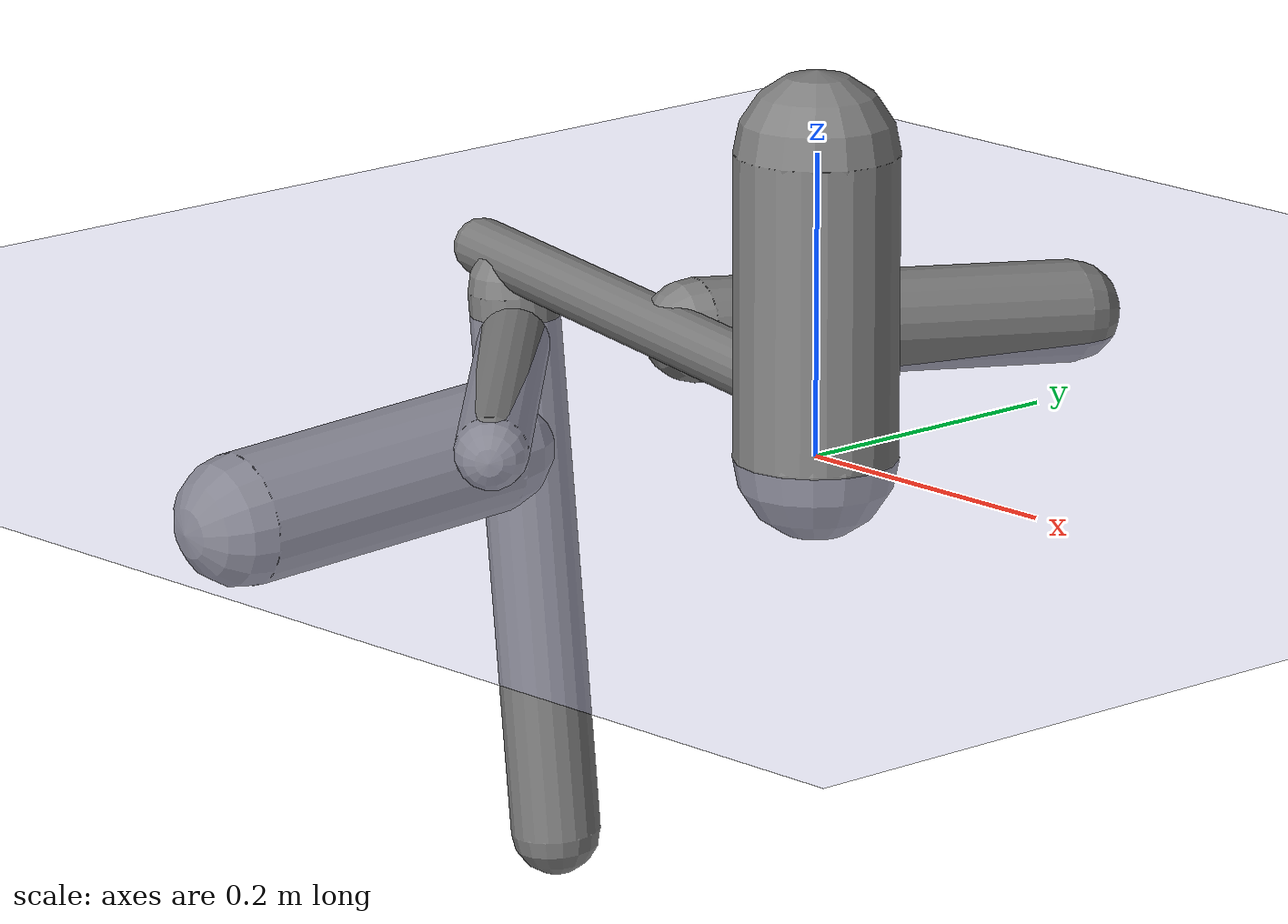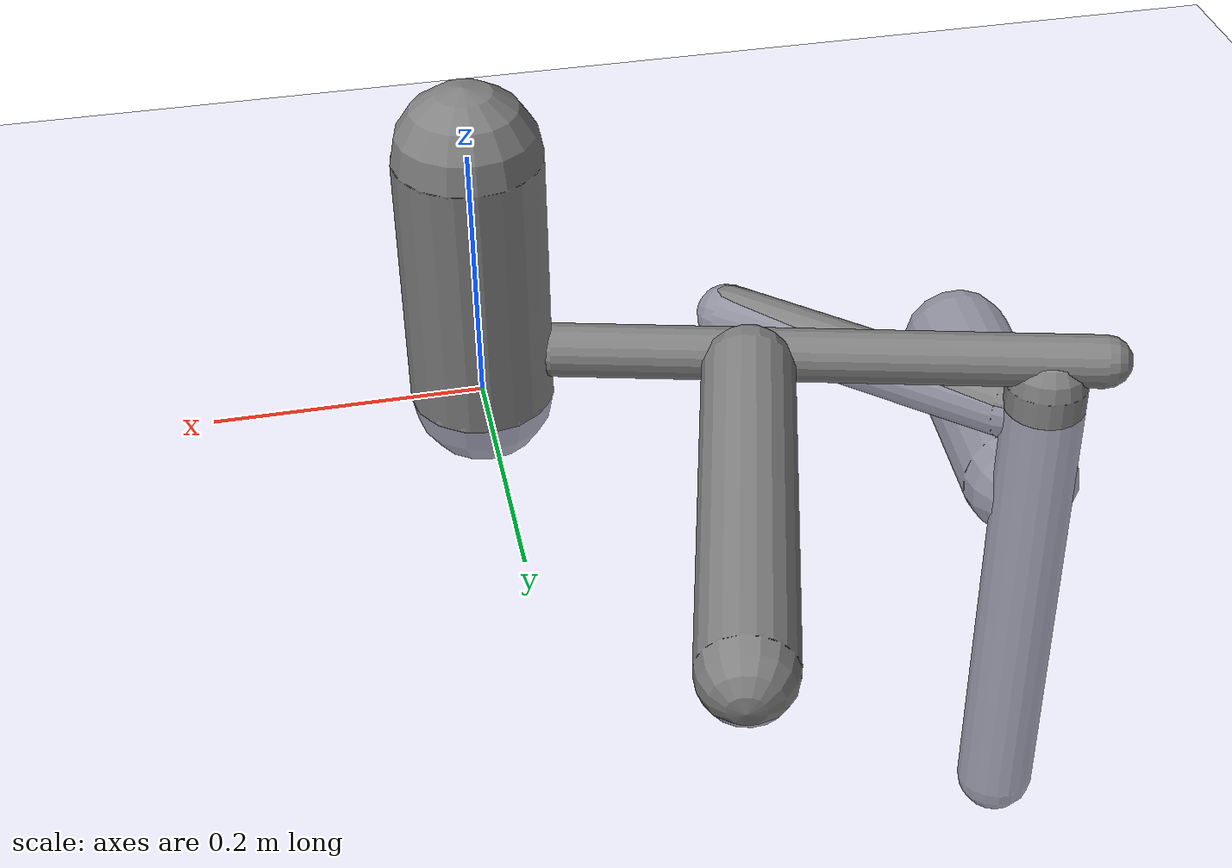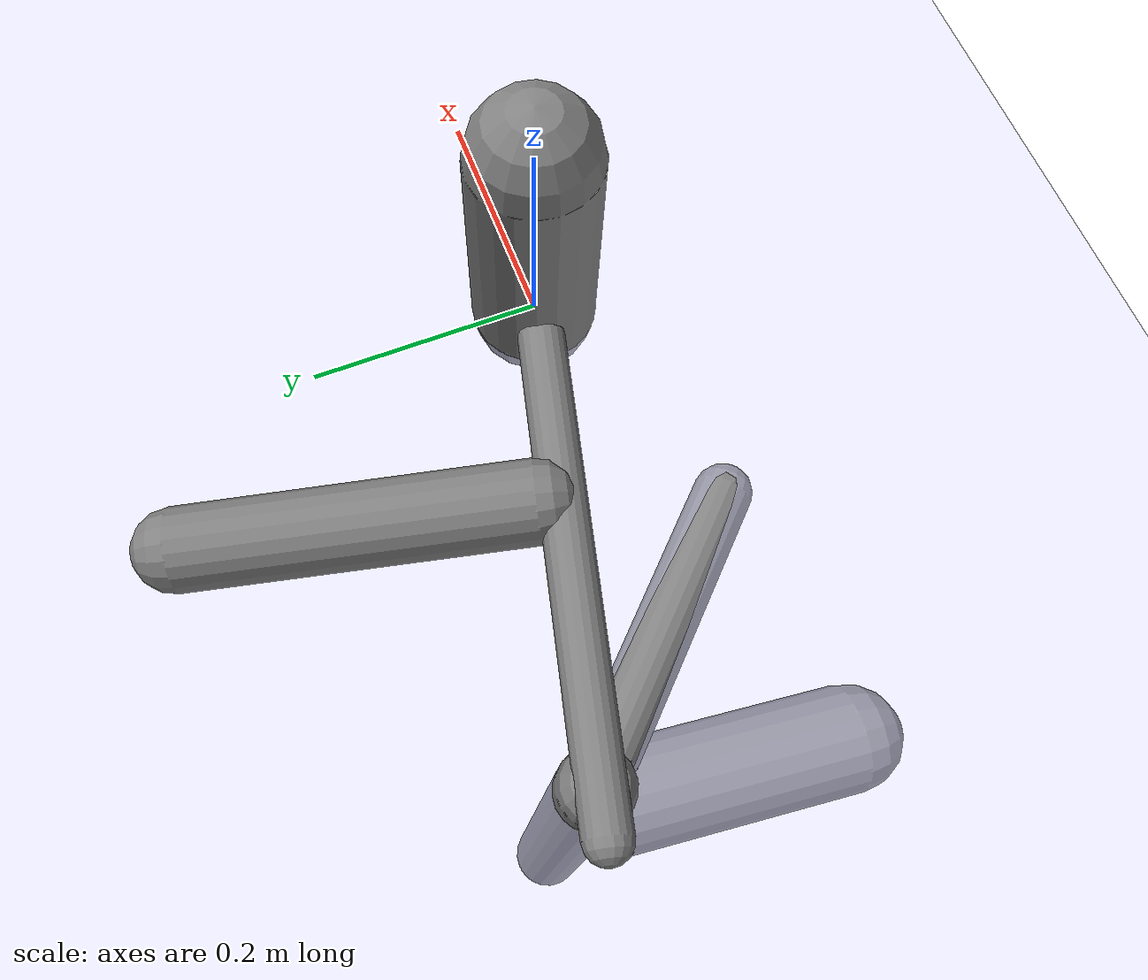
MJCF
<?xml version='1.0' encoding='UTF-8'?>
<mujoco model="robot_model">
  <worldbody>
    <light name="light" pos="0 -3 10" dir="0 0.5 -1" diffuse=".8 .8 .8" specular="0.1 0.1 0.1"/>
    <geom name="floor" type="plane" size="10.0 10.0 0.1" pos="0 0 0" rgba="0.8 0.8 1 1" contype="2" conaffinity="1"/>
    <body name="limb0" pos="0 0 0">
      <geom name="limb0_geom" type="capsule" fromto="0 0 0 0 0 0.2" size="0.053945224449662856" density="650.8536998548274" contype="1" conaffinity="2"/>
      <site type="sphere" size="0.01" name="limb0_site0" pos="-0.05231557374489271 0.013159330707418062 0.03767331421958639" quat="0.7071067811865476 -0.17249074545559395 -0.6857455378871767 0.0"/>
      <freejoint name="limb0_root"/>
      <body name="limb1" pos="-0.05231557374489271 0.013159330707418062 0.03767331421958639" quat="0.7071067811865476 -0.17249074545559395 -0.6857455378871767 0.0">
        <geom name="limb1_geom" type="capsule" fromto="0 0 0 0 0 0.40880768380833493" size="0.02" density="1012.7199341376381" contype="1" conaffinity="2"/>
        <site type="sphere" size="0.01" name="limb1_site0" pos="-0.01893624620227292 0.006435726825068351 0.3679047553688307" quat="0.7071067811865476 -0.2275373039935 -0.6694974049922594 0.0"/>
        <site type="sphere" size="0.01" name="limb1_site1" pos="0.0034024987314050944 0.019708450024869706 0.14549719725384433" quat="0.7071067811865476 -0.6967989329630775 0.12029649629775836 0.0"/>
        <body name="limb2" pos="-0.01893624620227292 0.006435726825068351 0.3679047553688307" quat="0.7071067811865476 -0.2275373039935 -0.6694974049922594 0.0">
          <geom name="limb2_geom" type="capsule" fromto="0 0 0 0 0 0.39228239834336115" size="0.031234842456126257" density="854.5538514341013" contype="1" conaffinity="2"/>
          <site type="sphere" size="0.01" name="limb2_site0" pos="-0.01446640470735543 -0.027682819908781547 0.10617060175419196" quat="0.7071067811865476 0.6266946826244069 -0.32749622100154663 0.0"/>
          <site type="sphere" size="0.01" name="limb2_site1" pos="-0.030515171451798145 -0.006666310413293918 0.029985682452816506" quat="0.7071067811865476 0.15091458538187963 -0.6908145828795272 0.0"/>
          <body name="limb3" pos="-0.01446640470735543 -0.027682819908781547 0.10617060175419196" quat="0.7071067811865476 0.6266946826244069 -0.32749622100154663 0.0">
            <geom name="limb3_geom" type="capsule" fromto="0 0 0 0 0 0.20587440072907823" size="0.04603065339053593" density="1089.820416514438" contype="1" conaffinity="2"/>
            <joint name="joint_limb2_limb3_0" type="hinge" axis="1 0 0" range="-76.8184141901732 76.8184141901732" damping="5.0"/>
          </body>
          <body name="limb4" pos="-0.030515171451798145 -0.006666310413293918 0.029985682452816506" quat="0.7071067811865476 0.15091458538187963 -0.6908145828795272 0.0">
            <geom name="limb4_geom" type="capsule" fromto="0 0 0 0 0 0.24646853483197184" size="0.02483242515105751" density="400.0" contype="1" conaffinity="2"/>
            <joint name="joint_limb2_limb4_0" type="hinge" axis="0 0 1" range="-36.57311519522722 36.57311519522722" damping="5.0"/>
          </body>
          <joint name="joint_limb1_limb2_0" type="hinge" axis="0 0 1" range="-71.25046564657563 71.25046564657563" damping="5.0"/>
        </body>
        <body name="limb5" pos="0.0034024987314050944 0.019708450024869706 0.14549719725384433" quat="0.7071067811865476 -0.6967989329630775 0.12029649629775836 0.0">
          <geom name="limb5_geom" type="capsule" fromto="0 0 0 0 0 0.28928158855542757" size="0.03498427886939431" density="573.2226405414596" contype="1" conaffinity="2"/>
          <joint name="joint_limb1_limb5_0" type="hinge" axis="1 0 0" range="-48.18281063347258 48.18281063347258" damping="5.0"/>
        </body>
        <joint name="joint_limb0_limb1_0" type="hinge" axis="0 1 0" range="-79.43746025127588 79.43746025127588" damping="5.0"/>
      </body>
    </body>
  </worldbody>
  <actuator>
    <position name="position_actuator_joint_limb0_limb1_0" joint="joint_limb0_limb1_0" gear="1.5835672608966855" inheritrange="1" forcerange="-2.770969892383645 2.770969892383645" forcelimited="true" kp="100.0"/>
    <position name="position_actuator_joint_limb1_limb2_0" joint="joint_limb1_limb2_0" gear="1.0104090267099286" inheritrange="1" forcerange="-5.682722942176081 5.682722942176081" forcelimited="true" kp="100.0"/>
    <position name="position_actuator_joint_limb2_limb3_0" joint="joint_limb2_limb3_0" gear="1.4426881968183625" inheritrange="1" forcerange="-9.693587687008968 9.693587687008968" forcelimited="true" kp="100.0"/>
    <position name="position_actuator_joint_limb2_limb4_0" joint="joint_limb2_limb4_0" gear="1.7107518951402347" inheritrange="1" forcerange="-1.0832328156449358 1.0832328156449358" forcelimited="true" kp="100.0"/>
    <position name="position_actuator_joint_limb1_limb5_0" joint="joint_limb1_limb5_0" gear="1.8903065910928873" inheritrange="1" forcerange="-3.701982454396224 3.701982454396224" forcelimited="true" kp="100.0"/>
  </actuator>
  <contact>
    <pair geom1="limb0_geom" geom2="limb1_geom"/>
    <pair geom1="limb1_geom" geom2="limb2_geom"/>
    <pair geom1="limb2_geom" geom2="limb3_geom"/>
    <pair geom1="limb2_geom" geom2="limb4_geom"/>
    <pair geom1="limb1_geom" geom2="limb5_geom"/>
  </contact>
</mujoco>
